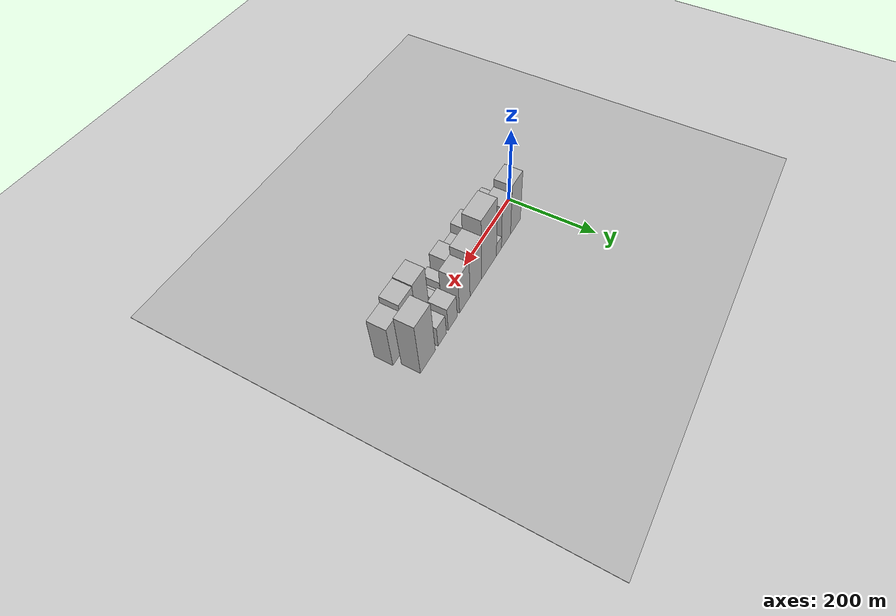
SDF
<?xml version="1.0" encoding="utf-8"?>

<sdf version="1.6">

   <world name="default">

      <gui fullscreen="0">

         <camera name="user_camera">

            <pose>-15 0 4.57585 0 0 0</pose>

            <view_controller>orbit</view_controller>

         </camera>

      </gui>

      <scene>

         <sky>

           <clouds>

             <speed>12</speed>

           </clouds>

         </sky>

         <ambient>0.4 0.4 0.4 1</ambient>

         <background>0.7 0.7 0.7 1</background>

         <shadows>1</shadows>

      </scene>

      <gravity>0 0 -9.8066</gravity>

      <magnetic_field>6e-06 2.3e-05 -4.2e-05</magnetic_field>

      <physics default="0" name="default_physics" type="ode">

         <ode>

            <solver>

               <type>quick</type>

               <iters>10</iters>

               <sor>1.0</sor>

               <use_dynamic_moi_rescaling>0</use_dynamic_moi_rescaling>

            </solver>

            <constraints>

               <cfm>0</cfm>

               <erp>0.2</erp>

               <contact_max_correcting_vel>100</contact_max_correcting_vel>

               <contact_surface_layer>0.001</contact_surface_layer>

            </constraints>

         </ode>

         <max_step_size>0.004</max_step_size>

         <real_time_factor>1</real_time_factor>

         <real_time_update_rate>250</real_time_update_rate>

      </physics>

      <light name="sun" type="directional">

         <cast_shadows>1</cast_shadows>

         <pose>0 0 10 0 0 0</pose>

         <diffuse>0.8 0.8 0.8 1</diffuse>

         <specular>0.2 0.2 0.2 1</specular>

         <attenuation>

            <range>1000</range>

            <constant>0.9</constant>

            <linear>0.01</linear>

            <quadratic>0.001</quadratic>

         </attenuation>

         <direction>-0.5 0.1 -0.9</direction>

      </light>

      <include>

         <name>ground_plane_1</name>

         <uri>model://HANNAS_ground_plane</uri>

         <pose>0 0 0  0 0 0</pose>

      </include>

      <include>

         <name>ground_plane_2</name>

         <uri>model://HANNAS_ground_plane</uri>

         <pose>100 0 0  0 0 0</pose>

      </include>

      <model name="building_1">

         <static>1</static>

         <pose frame="">63.0577 26.0000 0 0.000000 0.000000 1.570796</pose>

         <link name="link">

            <pose frame="">0 0 73.50 0 0 0</pose>

            <collision name="collision">

               <geometry>

                  <box>

                     <size>40.0000 46.1155 147.0000</size>

                  </box>

               </geometry>

               <max_contacts>10</max_contacts>

               <surface>

                  <contact>

                     <ode/>

                  </contact>

                  <bounce/>

                  <friction>

                     <torsional>

                        <ode/>

                     </torsional>

                     <ode/>

                  </friction>

               </surface>

            </collision>

            <visual name="visual">

               <cast_shadows>0</cast_shadows>

               <geometry>

                  <box>

                     <size>40.0000 46.1155 147.0000</size>

                  </box>

               </geometry>

               <material>

                  <script>

                     <uri>model://HANNAS_wall/materials/scripts</uri>

                     <uri>model://HANNAS_wall/materials/textures</uri>

                     <name>vrc/HANNAS_wall</name>

                  </script>

               </material>

            </visual>

            <self_collide>0</self_collide>

            <enable_wind>0</enable_wind>

            <kinematic>0</kinematic>

         </link>

      </model>

      <model name="building_2">

         <static>1</static>

         <pose frame="">106.8716 26.0000 0 0.000000 0.000000 1.570796</pose>

         <link name="link">

            <pose frame="">0 0 63.00 0 0 0</pose>

            <collision name="collision">

               <geometry>

                  <box>

                     <size>40.0000 41.5122 126.0000</size>

                  </box>

               </geometry>

               <max_contacts>10</max_contacts>

               <surface>

                  <contact>

                     <ode/>

                  </contact>

                  <bounce/>

                  <friction>

                     <torsional>

                        <ode/>

                     </torsional>

                     <ode/>

                  </friction>

               </surface>

            </collision>

            <visual name="visual">

               <cast_shadows>0</cast_shadows>

               <geometry>

                  <box>

                     <size>40.0000 41.5122 126.0000</size>

                  </box>

               </geometry>

               <material>

                  <script>

                     <uri>model://HANNAS_wall/materials/scripts</uri>

                     <uri>model://HANNAS_wall/materials/textures</uri>

                     <name>vrc/HANNAS_wall</name>

                  </script>

               </material>

            </visual>

            <self_collide>0</self_collide>

            <enable_wind>0</enable_wind>

            <kinematic>0</kinematic>

         </link>

      </model>

      <model name="building_3">

         <static>1</static>

         <pose frame="">138.6903 26.0000 0 0.000000 0.000000 1.570796</pose>

         <link name="link">

            <pose frame="">0 0 19.50 0 0 0</pose>

            <collision name="collision">

               <geometry>

                  <box>

                     <size>40.0000 22.1253 39.0000</size>

                  </box>

               </geometry>

               <max_contacts>10</max_contacts>

               <surface>

                  <contact>

                     <ode/>

                  </contact>

                  <bounce/>

                  <friction>

                     <torsional>

                        <ode/>

                     </torsional>

                     <ode/>

                  </friction>

               </surface>

            </collision>

            <visual name="visual">

               <cast_shadows>0</cast_shadows>

               <geometry>

                  <box>

                     <size>40.0000 22.1253 39.0000</size>

                  </box>

               </geometry>

               <material>

                  <script>

                     <uri>model://HANNAS_wall/materials/scripts</uri>

                     <uri>model://HANNAS_wall/materials/textures</uri>

                     <name>vrc/HANNAS_wall</name>

                  </script>

               </material>

            </visual>

            <self_collide>0</self_collide>

            <enable_wind>0</enable_wind>

            <kinematic>0</kinematic>

         </link>

      </model>

      <model name="building_4">

         <static>1</static>

         <pose frame="">181.4317 26.0000 0 0.000000 0.000000 1.570796</pose>

         <link name="link">

            <pose frame="">0 0 88.50 0 0 0</pose>

            <collision name="collision">

               <geometry>

                  <box>

                     <size>40.0000 63.3573 177.0000</size>

                  </box>

               </geometry>

               <max_contacts>10</max_contacts>

               <surface>

                  <contact>

                     <ode/>

                  </contact>

                  <bounce/>

                  <friction>

                     <torsional>

                        <ode/>

                     </torsional>

                     <ode/>

                  </friction>

               </surface>

            </collision>

            <visual name="visual">

               <cast_shadows>0</cast_shadows>

               <geometry>

                  <box>

                     <size>40.0000 63.3573 177.0000</size>

                  </box>

               </geometry>

               <material>

                  <script>

                     <uri>model://HANNAS_wall/materials/scripts</uri>

                     <uri>model://HANNAS_wall/materials/textures</uri>

                     <name>vrc/HANNAS_wall</name>

                  </script>

               </material>

            </visual>

            <self_collide>0</self_collide>

            <enable_wind>0</enable_wind>

            <kinematic>0</kinematic>

         </link>

      </model>

      <model name="building_5">

         <static>1</static>

         <pose frame="">236.9124 26.0000 0 0.000000 0.000000 1.570796</pose>

         <link name="link">

            <pose frame="">0 0 67.50 0 0 0</pose>

            <collision name="collision">

               <geometry>

                  <box>

                     <size>40.0000 47.6041 135.0000</size>

                  </box>

               </geometry>

               <max_contacts>10</max_contacts>

               <surface>

                  <contact>

                     <ode/>

                  </contact>

                  <bounce/>

                  <friction>

                     <torsional>

                        <ode/>

                     </torsional>

                     <ode/>

                  </friction>

               </surface>

            </collision>

            <visual name="visual">

               <cast_shadows>0</cast_shadows>

               <geometry>

                  <box>

                     <size>40.0000 47.6041 135.0000</size>

                  </box>

               </geometry>

               <material>

                  <script>

                     <uri>model://HANNAS_wall/materials/scripts</uri>

                     <uri>model://HANNAS_wall/materials/textures</uri>

                     <name>vrc/HANNAS_wall</name>

                  </script>

               </material>

            </visual>

            <self_collide>0</self_collide>

            <enable_wind>0</enable_wind>

            <kinematic>0</kinematic>

         </link>

      </model>

      <model name="building_6">

         <static>1</static>

         <pose frame="">281.5483 26.0000 0 0.000000 0.000000 1.570796</pose>

         <link name="link">

            <pose frame="">0 0 55.50 0 0 0</pose>

            <collision name="collision">

               <geometry>

                  <box>

                     <size>40.0000 41.6678 111.0000</size>

                  </box>

               </geometry>

               <max_contacts>10</max_contacts>

               <surface>

                  <contact>

                     <ode/>

                  </contact>

                  <bounce/>

                  <friction>

                     <torsional>

                        <ode/>

                     </torsional>

                     <ode/>

                  </friction>

               </surface>

            </collision>

            <visual name="visual">

               <cast_shadows>0</cast_shadows>

               <geometry>

                  <box>

                     <size>40.0000 41.6678 111.0000</size>

                  </box>

               </geometry>

               <material>

                  <script>

                     <uri>model://HANNAS_wall/materials/scripts</uri>

                     <uri>model://HANNAS_wall/materials/textures</uri>

                     <name>vrc/HANNAS_wall</name>

                  </script>

               </material>

            </visual>

            <self_collide>0</self_collide>

            <enable_wind>0</enable_wind>

            <kinematic>0</kinematic>

         </link>

      </model>

      <model name="building_7">

         <static>1</static>

         <pose frame="">328.6439 26.0000 0 0.000000 0.000000 1.570796</pose>

         <link name="link">

            <pose frame="">0 0 34.50 0 0 0</pose>

            <collision name="collision">

               <geometry>

                  <box>

                     <size>40.0000 34.5233 69.0000</size>

                  </box>

               </geometry>

               <max_contacts>10</max_contacts>

               <surface>

                  <contact>

                     <ode/>

                  </contact>

                  <bounce/>

                  <friction>

                     <torsional>

                        <ode/>

                     </torsional>

                     <ode/>

                  </friction>

               </surface>

            </collision>

            <visual name="visual">

               <cast_shadows>0</cast_shadows>

               <geometry>

                  <box>

                     <size>40.0000 34.5233 69.0000</size>

                  </box>

               </geometry>

               <material>

                  <script>

                     <uri>model://HANNAS_wall/materials/scripts</uri>

                     <uri>model://HANNAS_wall/materials/textures</uri>

                     <name>vrc/HANNAS_wall</name>

                  </script>

               </material>

            </visual>

            <self_collide>0</self_collide>

            <enable_wind>0</enable_wind>

            <kinematic>0</kinematic>

         </link>

      </model>

      <model name="building_8">

         <static>1</static>

         <pose frame="">368.2719 26.0000 0 0.000000 0.000000 1.570796</pose>

         <link name="link">

            <pose frame="">0 0 30.00 0 0 0</pose>

            <collision name="collision">

               <geometry>

                  <box>

                     <size>40.0000 30.7327 60.0000</size>

                  </box>

               </geometry>

               <max_contacts>10</max_contacts>

               <surface>

                  <contact>

                     <ode/>

                  </contact>

                  <bounce/>

                  <friction>

                     <torsional>

                        <ode/>

                     </torsional>

                     <ode/>

                  </friction>

               </surface>

            </collision>

            <visual name="visual">

               <cast_shadows>0</cast_shadows>

               <geometry>

                  <box>

                     <size>40.0000 30.7327 60.0000</size>

                  </box>

               </geometry>

               <material>

                  <script>

                     <uri>model://HANNAS_wall/materials/scripts</uri>

                     <uri>model://HANNAS_wall/materials/textures</uri>

                     <name>vrc/HANNAS_wall</name>

                  </script>

               </material>

            </visual>

            <self_collide>0</self_collide>

            <enable_wind>0</enable_wind>

            <kinematic>0</kinematic>

         </link>

      </model>

      <model name="building_9">

         <static>1</static>

         <pose frame="">420.0152 26.0000 0 0.000000 0.000000 1.570796</pose>

         <link name="link">

            <pose frame="">0 0 76.50 0 0 0</pose>

            <collision name="collision">

               <geometry>

                  <box>

                     <size>40.0000 52.7540 153.0000</size>

                  </box>

               </geometry>

               <max_contacts>10</max_contacts>

               <surface>

                  <contact>

                     <ode/>

                  </contact>

                  <bounce/>

                  <friction>

                     <torsional>

                        <ode/>

                     </torsional>

                     <ode/>

                  </friction>

               </surface>

            </collision>

            <visual name="visual">

               <cast_shadows>0</cast_shadows>

               <geometry>

                  <box>

                     <size>40.0000 52.7540 153.0000</size>

                  </box>

               </geometry>

               <material>

                  <script>

                     <uri>model://HANNAS_wall/materials/scripts</uri>

                     <uri>model://HANNAS_wall/materials/textures</uri>

                     <name>vrc/HANNAS_wall</name>

                  </script>

               </material>

            </visual>

            <self_collide>0</self_collide>

            <enable_wind>0</enable_wind>

            <kinematic>0</kinematic>

         </link>

      </model>

      <model name="building_10">

         <static>1</static>

         <pose frame="">54.0624 -26.0000 0 0.000000 0.000000 1.570796</pose>

         <link name="link">

            <pose frame="">0 0 27.00 0 0 0</pose>

            <collision name="collision">

               <geometry>

                  <box>

                     <size>40.0000 28.1248 54.0000</size>

                  </box>

               </geometry>

               <max_contacts>10</max_contacts>

               <surface>

                  <contact>

                     <ode/>

                  </contact>

                  <bounce/>

                  <friction>

                     <torsional>

                        <ode/>

                     </torsional>

                     <ode/>

                  </friction>

               </surface>

            </collision>

            <visual name="visual">

               <cast_shadows>0</cast_shadows>

               <geometry>

                  <box>

                     <size>40.0000 28.1248 54.0000</size>

                  </box>

               </geometry>

               <material>

                  <script>

                     <uri>model://HANNAS_wall/materials/scripts</uri>

                     <uri>model://HANNAS_wall/materials/textures</uri>

                     <name>vrc/HANNAS_wall</name>

                  </script>

               </material>

            </visual>

            <self_collide>0</self_collide>

            <enable_wind>0</enable_wind>

            <kinematic>0</kinematic>

         </link>

      </model>

      <model name="building_11">

         <static>1</static>

         <pose frame="">82.9987 -26.0000 0 0.000000 0.000000 1.570796</pose>

         <link name="link">

            <pose frame="">0 0 28.50 0 0 0</pose>

            <collision name="collision">

               <geometry>

                  <box>

                     <size>40.0000 29.7478 57.0000</size>

                  </box>

               </geometry>

               <max_contacts>10</max_contacts>

               <surface>

                  <contact>

                     <ode/>

                  </contact>

                  <bounce/>

                  <friction>

                     <torsional>

                        <ode/>

                     </torsional>

                     <ode/>

                  </friction>

               </surface>

            </collision>

            <visual name="visual">

               <cast_shadows>0</cast_shadows>

               <geometry>

                  <box>

                     <size>40.0000 29.7478 57.0000</size>

                  </box>

               </geometry>

               <material>

                  <script>

                     <uri>model://HANNAS_wall/materials/scripts</uri>

                     <uri>model://HANNAS_wall/materials/textures</uri>

                     <name>vrc/HANNAS_wall</name>

                  </script>

               </material>

            </visual>

            <self_collide>0</self_collide>

            <enable_wind>0</enable_wind>

            <kinematic>0</kinematic>

         </link>

      </model>

      <model name="building_12">

         <static>1</static>

         <pose frame="">107.8388 -26.0000 0 0.000000 0.000000 1.570796</pose>

         <link name="link">

            <pose frame="">0 0 18.00 0 0 0</pose>

            <collision name="collision">

               <geometry>

                  <box>

                     <size>40.0000 19.9323 36.0000</size>

                  </box>

               </geometry>

               <max_contacts>10</max_contacts>

               <surface>

                  <contact>

                     <ode/>

                  </contact>

                  <bounce/>

                  <friction>

                     <torsional>

                        <ode/>

                     </torsional>

                     <ode/>

                  </friction>

               </surface>

            </collision>

            <visual name="visual">

               <cast_shadows>0</cast_shadows>

               <geometry>

                  <box>

                     <size>40.0000 19.9323 36.0000</size>

                  </box>

               </geometry>

               <material>

                  <script>

                     <uri>model://HANNAS_wall/materials/scripts</uri>

                     <uri>model://HANNAS_wall/materials/textures</uri>

                     <name>vrc/HANNAS_wall</name>

                  </script>

               </material>

            </visual>

            <self_collide>0</self_collide>

            <enable_wind>0</enable_wind>

            <kinematic>0</kinematic>

         </link>

      </model>

      <model name="building_13">

         <static>1</static>

         <pose frame="">149.1406 -26.0000 0 0.000000 0.000000 1.570796</pose>

         <link name="link">

            <pose frame="">0 0 37.50 0 0 0</pose>

            <collision name="collision">

               <geometry>

                  <box>

                     <size>40.0000 42.6714 75.0000</size>

                  </box>

               </geometry>

               <max_contacts>10</max_contacts>

               <surface>

                  <contact>

                     <ode/>

                  </contact>

                  <bounce/>

                  <friction>

                     <torsional>

                        <ode/>

                     </torsional>

                     <ode/>

                  </friction>

               </surface>

            </collision>

            <visual name="visual">

               <cast_shadows>0</cast_shadows>

               <geometry>

                  <box>

                     <size>40.0000 42.6714 75.0000</size>

                  </box>

               </geometry>

               <material>

                  <script>

                     <uri>model://HANNAS_wall/materials/scripts</uri>

                     <uri>model://HANNAS_wall/materials/textures</uri>

                     <name>vrc/HANNAS_wall</name>

                  </script>

               </material>

            </visual>

            <self_collide>0</self_collide>

            <enable_wind>0</enable_wind>

            <kinematic>0</kinematic>

         </link>

      </model>

      <model name="building_14">

         <static>1</static>

         <pose frame="">184.8186 -26.0000 0 0.000000 0.000000 1.570796</pose>

         <link name="link">

            <pose frame="">0 0 24.00 0 0 0</pose>

            <collision name="collision">

               <geometry>

                  <box>

                     <size>40.0000 28.6846 48.0000</size>

                  </box>

               </geometry>

               <max_contacts>10</max_contacts>

               <surface>

                  <contact>

                     <ode/>

                  </contact>

                  <bounce/>

                  <friction>

                     <torsional>

                        <ode/>

                     </torsional>

                     <ode/>

                  </friction>

               </surface>

            </collision>

            <visual name="visual">

               <cast_shadows>0</cast_shadows>

               <geometry>

                  <box>

                     <size>40.0000 28.6846 48.0000</size>

                  </box>

               </geometry>

               <material>

                  <script>

                     <uri>model://HANNAS_wall/materials/scripts</uri>

                     <uri>model://HANNAS_wall/materials/textures</uri>

                     <name>vrc/HANNAS_wall</name>

                  </script>

               </material>

            </visual>

            <self_collide>0</self_collide>

            <enable_wind>0</enable_wind>

            <kinematic>0</kinematic>

         </link>

      </model>

      <model name="building_15">

         <static>1</static>

         <pose frame="">207.0385 -26.0000 0 0.000000 0.000000 1.570796</pose>

         <link name="link">

            <pose frame="">0 0 15.00 0 0 0</pose>

            <collision name="collision">

               <geometry>

                  <box>

                     <size>40.0000 15.7552 30.0000</size>

                  </box>

               </geometry>

               <max_contacts>10</max_contacts>

               <surface>

                  <contact>

                     <ode/>

                  </contact>

                  <bounce/>

                  <friction>

                     <torsional>

                        <ode/>

                     </torsional>

                     <ode/>

                  </friction>

               </surface>

            </collision>

            <visual name="visual">

               <cast_shadows>0</cast_shadows>

               <geometry>

                  <box>

                     <size>40.0000 15.7552 30.0000</size>

                  </box>

               </geometry>

               <material>

                  <script>

                     <uri>model://HANNAS_wall/materials/scripts</uri>

                     <uri>model://HANNAS_wall/materials/textures</uri>

                     <name>vrc/HANNAS_wall</name>

                  </script>

               </material>

            </visual>

            <self_collide>0</self_collide>

            <enable_wind>0</enable_wind>

            <kinematic>0</kinematic>

         </link>

      </model>

      <model name="building_16">

         <static>1</static>

         <pose frame="">233.7462 -26.0000 0 0.000000 0.000000 1.570796</pose>

         <link name="link">

            <pose frame="">0 0 36.00 0 0 0</pose>

            <collision name="collision">

               <geometry>

                  <box>

                     <size>40.0000 37.6602 72.0000</size>

                  </box>

               </geometry>

               <max_contacts>10</max_contacts>

               <surface>

                  <contact>

                     <ode/>

                  </contact>

                  <bounce/>

                  <friction>

                     <torsional>

                        <ode/>

                     </torsional>

                     <ode/>

                  </friction>

               </surface>

            </collision>

            <visual name="visual">

               <cast_shadows>0</cast_shadows>

               <geometry>

                  <box>

                     <size>40.0000 37.6602 72.0000</size>

                  </box>

               </geometry>

               <material>

                  <script>

                     <uri>model://HANNAS_wall/materials/scripts</uri>

                     <uri>model://HANNAS_wall/materials/textures</uri>

                     <name>vrc/HANNAS_wall</name>

                  </script>

               </material>

            </visual>

            <self_collide>0</self_collide>

            <enable_wind>0</enable_wind>

            <kinematic>0</kinematic>

         </link>

      </model>

      <model name="building_17">

         <static>1</static>

         <pose frame="">273.3474 -26.0000 0 0.000000 0.000000 1.570796</pose>

         <link name="link">

            <pose frame="">0 0 21.00 0 0 0</pose>

            <collision name="collision">

               <geometry>

                  <box>

                     <size>40.0000 23.5421 42.0000</size>

                  </box>

               </geometry>

               <max_contacts>10</max_contacts>

               <surface>

                  <contact>

                     <ode/>

                  </contact>

                  <bounce/>

                  <friction>

                     <torsional>

                        <ode/>

                     </torsional>

                     <ode/>

                  </friction>

               </surface>

            </collision>

            <visual name="visual">

               <cast_shadows>0</cast_shadows>

               <geometry>

                  <box>

                     <size>40.0000 23.5421 42.0000</size>

                  </box>

               </geometry>

               <material>

                  <script>

                     <uri>model://HANNAS_wall/materials/scripts</uri>

                     <uri>model://HANNAS_wall/materials/textures</uri>

                     <name>vrc/HANNAS_wall</name>

                  </script>

               </material>

            </visual>

            <self_collide>0</self_collide>

            <enable_wind>0</enable_wind>

            <kinematic>0</kinematic>

         </link>

      </model>

      <model name="building_18">

         <static>1</static>

         <pose frame="">289.3252 -26.0000 0 0.000000 0.000000 1.570796</pose>

         <link name="link">

            <pose frame="">0 0 9.00 0 0 0</pose>

            <collision name="collision">

               <geometry>

                  <box>

                     <size>40.0000 8.4134 18.0000</size>

                  </box>

               </geometry>

               <max_contacts>10</max_contacts>

               <surface>

                  <contact>

                     <ode/>

                  </contact>

                  <bounce/>

                  <friction>

                     <torsional>

                        <ode/>

                     </torsional>

                     <ode/>

                  </friction>

               </surface>

            </collision>

            <visual name="visual">

               <cast_shadows>0</cast_shadows>

               <geometry>

                  <box>

                     <size>40.0000 8.4134 18.0000</size>

                  </box>

               </geometry>

               <material>

                  <script>

                     <uri>model://HANNAS_wall/materials/scripts</uri>

                     <uri>model://HANNAS_wall/materials/textures</uri>

                     <name>vrc/HANNAS_wall</name>

                  </script>

               </material>

            </visual>

            <self_collide>0</self_collide>

            <enable_wind>0</enable_wind>

            <kinematic>0</kinematic>

         </link>

      </model>

      <model name="building_19">

         <static>1</static>

         <pose frame="">307.4489 -26.0000 0 0.000000 0.000000 1.570796</pose>

         <link name="link">

            <pose frame="">0 0 16.50 0 0 0</pose>

            <collision name="collision">

               <geometry>

                  <box>

                     <size>40.0000 17.8341 33.0000</size>

                  </box>

               </geometry>

               <max_contacts>10</max_contacts>

               <surface>

                  <contact>

                     <ode/>

                  </contact>

                  <bounce/>

                  <friction>

                     <torsional>

                        <ode/>

                     </torsional>

                     <ode/>

                  </friction>

               </surface>

            </collision>

            <visual name="visual">

               <cast_shadows>0</cast_shadows>

               <geometry>

                  <box>

                     <size>40.0000 17.8341 33.0000</size>

                  </box>

               </geometry>

               <material>

                  <script>

                     <uri>model://HANNAS_wall/materials/scripts</uri>

                     <uri>model://HANNAS_wall/materials/textures</uri>

                     <name>vrc/HANNAS_wall</name>

                  </script>

               </material>

            </visual>

            <self_collide>0</self_collide>

            <enable_wind>0</enable_wind>

            <kinematic>0</kinematic>

         </link>

      </model>

      <model name="building_20">

         <static>1</static>

         <pose frame="">348.1505 -26.0000 0 0.000000 0.000000 1.570796</pose>

         <link name="link">

            <pose frame="">0 0 70.50 0 0 0</pose>

            <collision name="collision">

               <geometry>

                  <box>

                     <size>40.0000 43.5691 141.0000</size>

                  </box>

               </geometry>

               <max_contacts>10</max_contacts>

               <surface>

                  <contact>

                     <ode/>

                  </contact>

                  <bounce/>

                  <friction>

                     <torsional>

                        <ode/>

                     </torsional>

                     <ode/>

                  </friction>

               </surface>

            </collision>

            <visual name="visual">

               <cast_shadows>0</cast_shadows>

               <geometry>

                  <box>

                     <size>40.0000 43.5691 141.0000</size>

                  </box>

               </geometry>

               <material>

                  <script>

                     <uri>model://HANNAS_wall/materials/scripts</uri>

                     <uri>model://HANNAS_wall/materials/textures</uri>

                     <name>vrc/HANNAS_wall</name>

                  </script>

               </material>

            </visual>

            <self_collide>0</self_collide>

            <enable_wind>0</enable_wind>

            <kinematic>0</kinematic>

         </link>

      </model>

      <model name="building_21">

         <static>1</static>

         <pose frame="">391.7637 -26.0000 0 0.000000 0.000000 1.570796</pose>

         <link name="link">

            <pose frame="">0 0 69.00 0 0 0</pose>

            <collision name="collision">

               <geometry>

                  <box>

                     <size>40.0000 43.6572 138.0000</size>

                  </box>

               </geometry>

               <max_contacts>10</max_contacts>

               <surface>

                  <contact>

                     <ode/>

                  </contact>

                  <bounce/>

                  <friction>

                     <torsional>

                        <ode/>

                     </torsional>

                     <ode/>

                  </friction>

               </surface>

            </collision>

            <visual name="visual">

               <cast_shadows>0</cast_shadows>

               <geometry>

                  <box>

                     <size>40.0000 43.6572 138.0000</size>

                  </box>

               </geometry>

               <material>

                  <script>

                     <uri>model://HANNAS_wall/materials/scripts</uri>

                     <uri>model://HANNAS_wall/materials/textures</uri>

                     <name>vrc/HANNAS_wall</name>

                  </script>

               </material>

            </visual>

            <self_collide>0</self_collide>

            <enable_wind>0</enable_wind>

            <kinematic>0</kinematic>

         </link>

      </model>

      <model name="building_22">

         <static>1</static>

         <pose frame="">434.7698 -26.0000 0 0.000000 0.000000 1.570796</pose>

         <link name="link">

            <pose frame="">0 0 60.00 0 0 0</pose>

            <collision name="collision">

               <geometry>

                  <box>

                     <size>40.0000 42.3551 120.0000</size>

                  </box>

               </geometry>

               <max_contacts>10</max_contacts>

               <surface>

                  <contact>

                     <ode/>

                  </contact>

                  <bounce/>

                  <friction>

                     <torsional>

                        <ode/>

                     </torsional>

                     <ode/>

                  </friction>

               </surface>

            </collision>

            <visual name="visual">

               <cast_shadows>0</cast_shadows>

               <geometry>

                  <box>

                     <size>40.0000 42.3551 120.0000</size>

                  </box>

               </geometry>

               <material>

                  <script>

                     <uri>model://HANNAS_wall/materials/scripts</uri>

                     <uri>model://HANNAS_wall/materials/textures</uri>

                     <name>vrc/HANNAS_wall</name>

                  </script>

               </material>

            </visual>

            <self_collide>0</self_collide>

            <enable_wind>0</enable_wind>

            <kinematic>0</kinematic>

         </link>

      </model>

   </world>

</sdf>

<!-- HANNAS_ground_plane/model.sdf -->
<sdf version="1.4">
<model name="HANNAS_ground_plane">
  <static>true</static>
    <link name="link">
      <collision name="collision">
        <geometry>
          <plane>
            <normal>0 0 1</normal>
            <size>1000 1000</size>
          </plane>
        </geometry>
        <surface>
          <friction>
            <ode>
              <mu>100</mu>
              <mu2>50</mu2>
            </ode>
          </friction>
        </surface>
      </collision>
      <visual name="visual">
        <cast_shadows>false</cast_shadows>
        <geometry>
          <plane>
            <normal>0 0 1</normal>
            <size>1000 1000</size>
          </plane>
        </geometry>
        <material>
          <script>
            <uri>model://HANNAS_ground_plane/materials/scripts/HANNAS_ground_plane.material</uri>
	    <uri>model://HANNAS_ground_plane/materials/textures</uri>
            <name>HANNASGroundPlane/Image</name>
          </script>
        </material>
      </visual>
    </link>
  </model>
</sdf>
